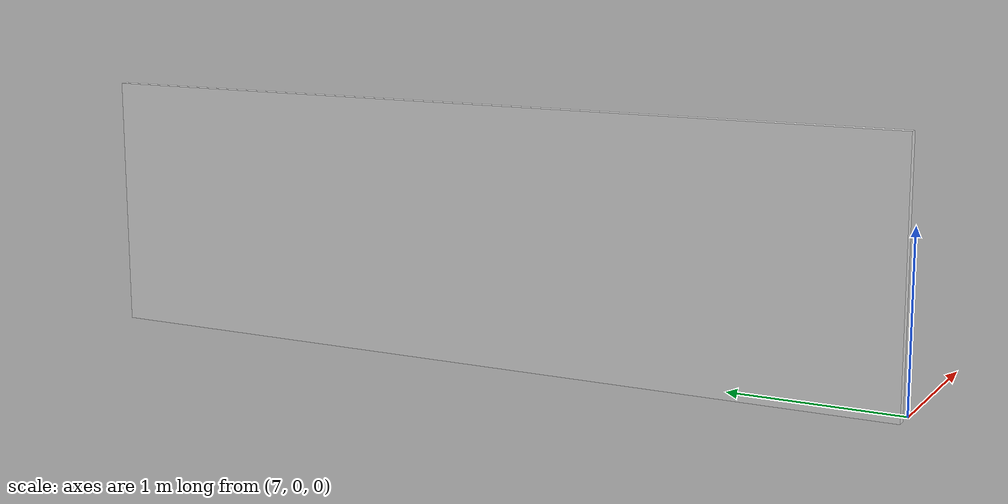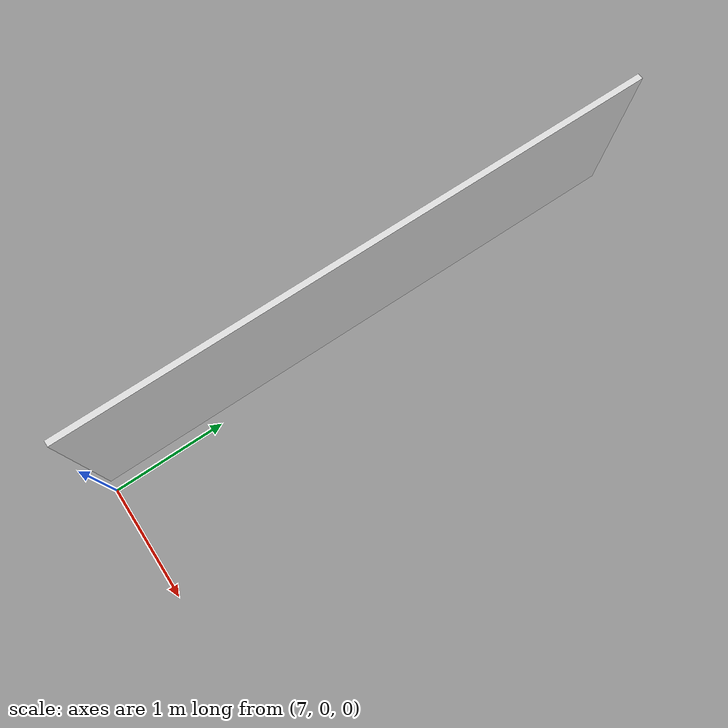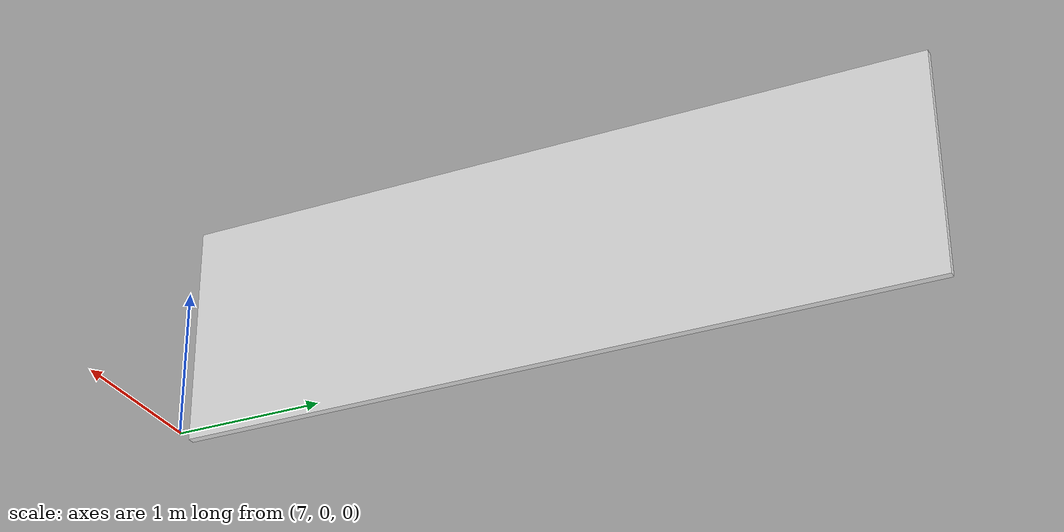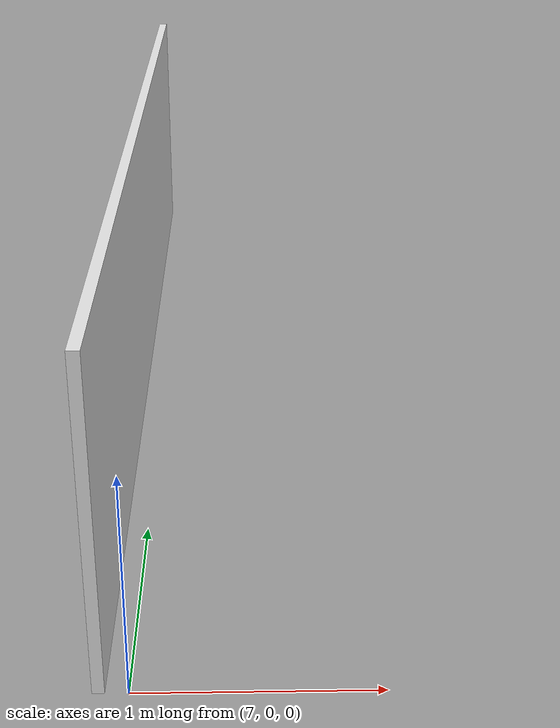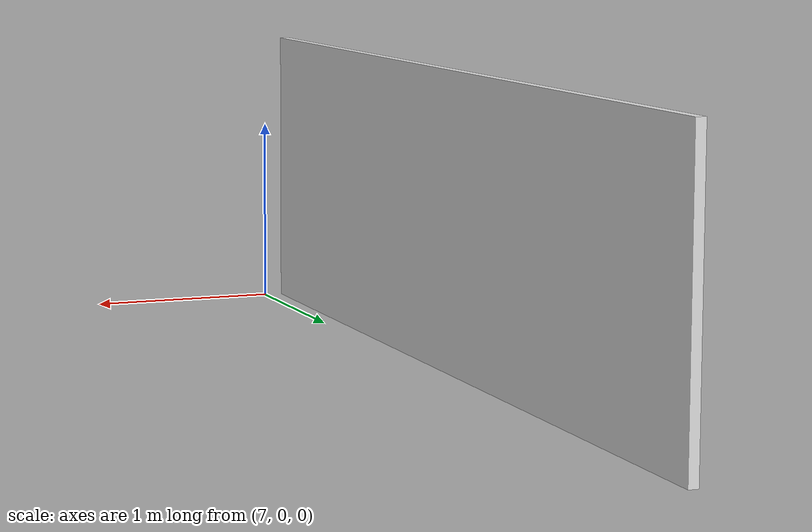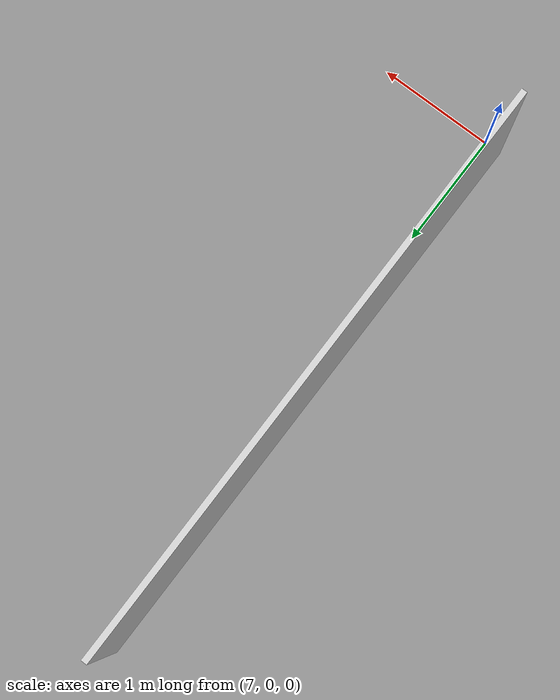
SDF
<?xml version="1.0" ?>
<sdf version="1.6">
  <model name="east_wall">
    <static>true</static>
    <pose>6.88 0 0 0 0 0</pose>

    <link name="wall">
      <collision name="wall_collision">
        <pose>0 2.5 0.75 0 0 0</pose>
        <geometry>
          <box>
            <size>0.05 5.0 1.5</size>
          </box>
        </geometry>
      </collision>
      <visual name="wall_visual">
        <pose>0 2.5 0.75 0 0 0</pose>
        <geometry>
          <box>
            <size>0.05 5.0 1.5</size>
          </box>
        </geometry>
        <material>
          <ambient>0.9 0.9 0.9 1</ambient>
          <diffuse>0.9 0.9 0.9 1</diffuse>
        </material>
      </visual>
    </link>
  </model>
</sdf>
